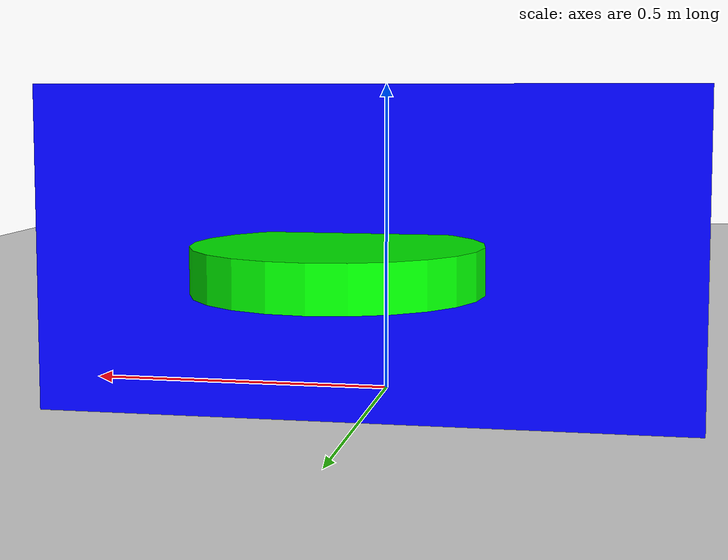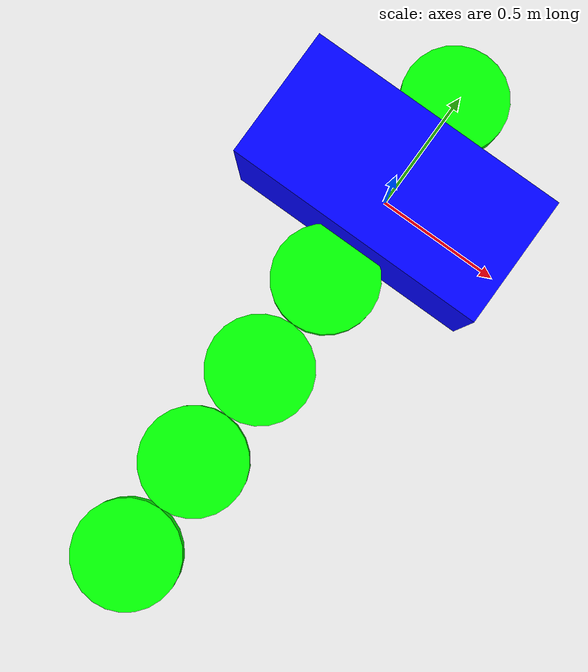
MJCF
<mujoco><worldbody><light diffuse=".5 .5 .5" pos="0 0 3" dir="0 0 -1" /><geom name="ground" type="plane" size="5 5 0.1" rgba=".9 .9 .9 1" /><body name="body"><freejoint name="root" /><geom name="torso" type="box" size="0.5 0.25 0.25" pos="0 0 0.25" rgba="0 0 1 1" mass="0.1" /><body name="wing0" pos="0 0.4 0.25" euler="0 0 90"><joint name="wing0link" type="hinge" axis="0 0 1" range="-1 1" /><geom name="wing0" type="cylinder" size="0.2 0.0325" pos="0 0 0" rgba="0 1 0 1" mass="1" /></body><body name="wingl0" pos="0 -0.4 0.25" euler="0 0 90"><joint name="wingl0link" type="hinge" axis="0 0 1" range="-1 1" /><geom name="wingl0" type="cylinder" size="0.2 0.0325" pos="0 0 0" rgba="0 1 0 1" mass="1" /><body name="wingl1" euler="0 0 0"><body name="wingl2" euler="0 0 0"><body name="wingl3" euler="0 0 0" /><joint name="wingl3link" type="hinge" pos="0 0 0" axis="1 0 0" range="-98 98" /><geom name="wingl3" type="cylinder" size="0.2 0.0325" pos="-1.2000000000000002 0 0" rgba="0 1 0 1" mass="1.5" /></body><joint name="wingl2link" type="hinge" pos="0 0 0" axis="1 0 0" range="-39 39" /><geom name="wingl2" type="cylinder" size="0.2 0.0325" pos="-0.8 0 0" rgba="0 1 0 1" mass="1.5" /></body><joint name="wingl1link" type="hinge" pos="0 0 0" axis="1 0 0" range="-67 67" /><geom name="wingl1" type="cylinder" size="0.2 0.0325" pos="-0.4 0 0" rgba="0 1 0 1" mass="1.5" /></body></body></worldbody><actuator><motor name="wing0" joint="wing0link" gear="69" /><motor name="wingl0" joint="wingl0link" gear="77" /><motor name="wingl1" joint="wingl1link" gear="86" /><motor name="wingl2" joint="wingl2link" gear="74" /><motor name="wingl3" joint="wingl3link" gear="47" /></actuator></mujoco>
